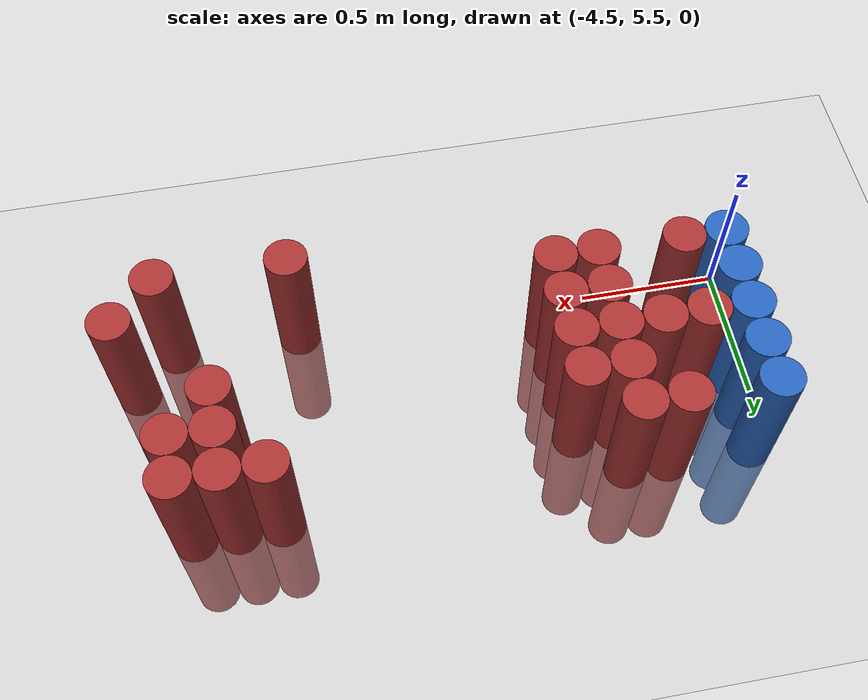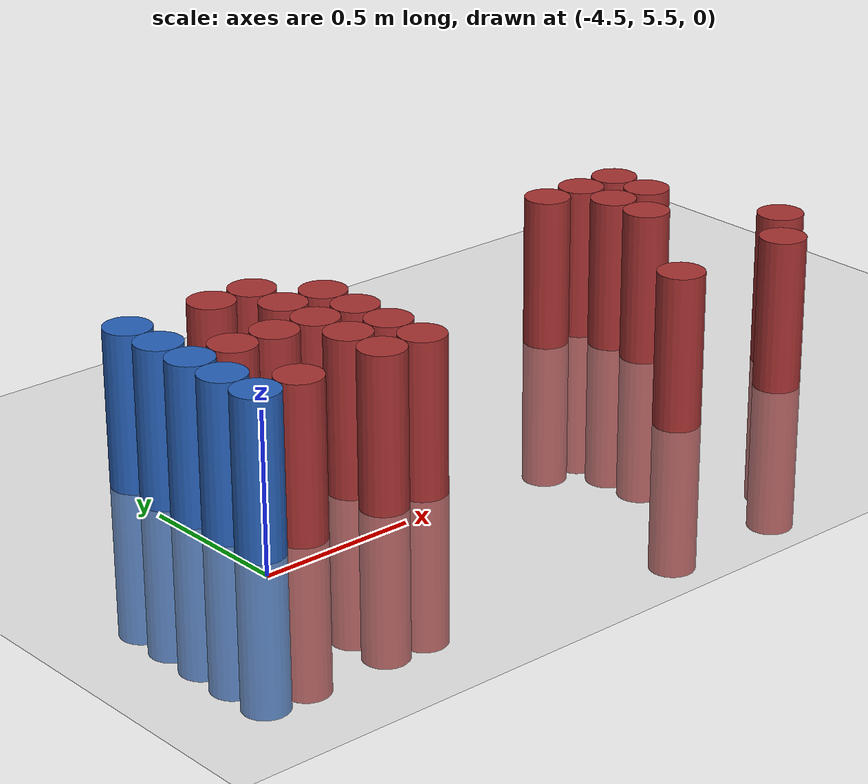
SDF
<sdf version="1.6">
 <world name="default">
  <model name="ground_plane">
   <static>1</static>
   <link name="link">
    <collision name="collision">
     <geometry><plane><normal>0 0 1</normal><size>100 100</size></plane></geometry>
     <surface><friction><ode><mu>100</mu><mu2>50</mu2></ode></friction></surface>
    </collision>
    <visual name="visual">
     <cast_shadows>0</cast_shadows>
     <geometry><plane><normal>0 0 1</normal><size>100 100</size></plane></geometry>
     <material>
      <script><uri>file://media/materials/scripts/gazebo.material</uri><name>Gazebo/Grey</name></script>
     </material>
    </visual>
   </link>
  </model>
  <model name="unit_cylinder_99">
   <static>1</static>
   <pose>-4.425000 5.625000 0.000000 0.000000 0.000000 0.000000</pose>
   <link name="link">
    <inertial>
     <mass>1</mass>
     <inertia><ixx>0.145833</ixx><ixy>0</ixy><ixz>0</ixz><iyy>0.145833</iyy><iyz>0</iyz><izz>0.125</izz></inertia>
    </inertial>
    <collision name="collision">
     <geometry><cylinder><radius>0.075000</radius><length>1</length></cylinder></geometry>
    </collision>
    <visual name="visual">
     <geometry><cylinder><radius>0.075000</radius><length>1</length></cylinder></geometry>
     <material>
      <ambient>0.152000 0.379000 0.720000 1</ambient>
      <diffuse>0.152000 0.379000 0.720000 1</diffuse>
     </material>
     <material>
      <script><name>Gazebo/Grey</name><uri>file://media/materials/scripts/gazebo.material</uri></script>
     </material>
    </visual>
   </link>
  </model>
  <model name="unit_cylinder_100">
   <static>1</static>
   <pose>-4.425000 5.775000 0.000000 0.000000 0.000000 0.000000</pose>
   <link name="link">
    <inertial>
     <mass>1</mass>
     <inertia><ixx>0.145833</ixx><ixy>0</ixy><ixz>0</ixz><iyy>0.145833</iyy><iyz>0</iyz><izz>0.125</izz></inertia>
    </inertial>
    <collision name="collision">
     <geometry><cylinder><radius>0.075000</radius><length>1</length></cylinder></geometry>
    </collision>
    <visual name="visual">
     <geometry><cylinder><radius>0.075000</radius><length>1</length></cylinder></geometry>
     <material>
      <ambient>0.152000 0.379000 0.720000 1</ambient>
      <diffuse>0.152000 0.379000 0.720000 1</diffuse>
     </material>
     <material>
      <script><name>Gazebo/Grey</name><uri>file://media/materials/scripts/gazebo.material</uri></script>
     </material>
    </visual>
   </link>
  </model>
  <model name="unit_cylinder_101">
   <static>1</static>
   <pose>-4.425000 5.925000 0.000000 0.000000 0.000000 0.000000</pose>
   <link name="link">
    <inertial>
     <mass>1</mass>
     <inertia><ixx>0.145833</ixx><ixy>0</ixy><ixz>0</ixz><iyy>0.145833</iyy><iyz>0</iyz><izz>0.125</izz></inertia>
    </inertial>
    <collision name="collision">
     <geometry><cylinder><radius>0.075000</radius><length>1</length></cylinder></geometry>
    </collision>
    <visual name="visual">
     <geometry><cylinder><radius>0.075000</radius><length>1</length></cylinder></geometry>
     <material>
      <ambient>0.152000 0.379000 0.720000 1</ambient>
      <diffuse>0.152000 0.379000 0.720000 1</diffuse>
     </material>
     <material>
      <script><name>Gazebo/Grey</name><uri>file://media/materials/scripts/gazebo.material</uri></script>
     </material>
    </visual>
   </link>
  </model>
  <model name="unit_cylinder_102">
   <static>1</static>
   <pose>-4.425000 6.075000 0.000000 0.000000 0.000000 0.000000</pose>
   <link name="link">
    <inertial>
     <mass>1</mass>
     <inertia><ixx>0.145833</ixx><ixy>0</ixy><ixz>0</ixz><iyy>0.145833</iyy><iyz>0</iyz><izz>0.125</izz></inertia>
    </inertial>
    <collision name="collision">
     <geometry><cylinder><radius>0.075000</radius><length>1</length></cylinder></geometry>
    </collision>
    <visual name="visual">
     <geometry><cylinder><radius>0.075000</radius><length>1</length></cylinder></geometry>
     <material>
      <ambient>0.152000 0.379000 0.720000 1</ambient>
      <diffuse>0.152000 0.379000 0.720000 1</diffuse>
     </material>
     <material>
      <script><name>Gazebo/Grey</name><uri>file://media/materials/scripts/gazebo.material</uri></script>
     </material>
    </visual>
   </link>
  </model>
  <model name="unit_cylinder_103">
   <static>1</static>
   <pose>-4.425000 6.225000 0.000000 0.000000 0.000000 0.000000</pose>
   <link name="link">
    <inertial>
     <mass>1</mass>
     <inertia><ixx>0.145833</ixx><ixy>0</ixy><ixz>0</ixz><iyy>0.145833</iyy><iyz>0</iyz><izz>0.125</izz></inertia>
    </inertial>
    <collision name="collision">
     <geometry><cylinder><radius>0.075000</radius><length>1</length></cylinder></geometry>
    </collision>
    <visual name="visual">
     <geometry><cylinder><radius>0.075000</radius><length>1</length></cylinder></geometry>
     <material>
      <ambient>0.152000 0.379000 0.720000 1</ambient>
      <diffuse>0.152000 0.379000 0.720000 1</diffuse>
     </material>
     <material>
      <script><name>Gazebo/Grey</name><uri>file://media/materials/scripts/gazebo.material</uri></script>
     </material>
    </visual>
   </link>
  </model>
  <model name="unit_cylinder_128">
   <static>1</static>
   <pose>-4.275000 5.625000 0.000000 0.000000 0.000000 0.000000</pose>
   <link name="link">
    <inertial>
     <mass>1</mass>
     <inertia><ixx>0.145833</ixx><ixy>0</ixy><ixz>0</ixz><iyy>0.145833</iyy><iyz>0</iyz><izz>0.125</izz></inertia>
    </inertial>
    <collision name="collision">
     <geometry><cylinder><radius>0.075000</radius><length>1</length></cylinder></geometry>
    </collision>
    <visual name="visual">
     <geometry><cylinder><radius>0.075000</radius><length>1</length></cylinder></geometry>
     <material>
      <ambient>0.648000 0.192000 0.192000 1</ambient>
      <diffuse>0.648000 0.192000 0.192000 1</diffuse>
     </material>
     <material>
      <script><name>Gazebo/Grey</name><uri>file://media/materials/scripts/gazebo.material</uri></script>
     </material>
    </visual>
   </link>
  </model>
  <model name="unit_cylinder_129">
   <static>1</static>
   <pose>-4.275000 5.925000 0.000000 0.000000 0.000000 0.000000</pose>
   <link name="link">
    <inertial>
     <mass>1</mass>
     <inertia><ixx>0.145833</ixx><ixy>0</ixy><ixz>0</ixz><iyy>0.145833</iyy><iyz>0</iyz><izz>0.125</izz></inertia>
    </inertial>
    <collision name="collision">
     <geometry><cylinder><radius>0.075000</radius><length>1</length></cylinder></geometry>
    </collision>
    <visual name="visual">
     <geometry><cylinder><radius>0.075000</radius><length>1</length></cylinder></geometry>
     <material>
      <ambient>0.648000 0.192000 0.192000 1</ambient>
      <diffuse>0.648000 0.192000 0.192000 1</diffuse>
     </material>
     <material>
      <script><name>Gazebo/Grey</name><uri>file://media/materials/scripts/gazebo.material</uri></script>
     </material>
    </visual>
   </link>
  </model>
  <model name="unit_cylinder_137">
   <static>1</static>
   <pose>-4.125000 5.925000 0.000000 0.000000 0.000000 0.000000</pose>
   <link name="link">
    <inertial>
     <mass>1</mass>
     <inertia><ixx>0.145833</ixx><ixy>0</ixy><ixz>0</ixz><iyy>0.145833</iyy><iyz>0</iyz><izz>0.125</izz></inertia>
    </inertial>
    <collision name="collision">
     <geometry><cylinder><radius>0.075000</radius><length>1</length></cylinder></geometry>
    </collision>
    <visual name="visual">
     <geometry><cylinder><radius>0.075000</radius><length>1</length></cylinder></geometry>
     <material>
      <ambient>0.648000 0.192000 0.192000 1</ambient>
      <diffuse>0.648000 0.192000 0.192000 1</diffuse>
     </material>
     <material>
      <script><name>Gazebo/Grey</name><uri>file://media/materials/scripts/gazebo.material</uri></script>
     </material>
    </visual>
   </link>
  </model>
  <model name="unit_cylinder_138">
   <static>1</static>
   <pose>-4.125000 6.225000 0.000000 0.000000 0.000000 0.000000</pose>
   <link name="link">
    <inertial>
     <mass>1</mass>
     <inertia><ixx>0.145833</ixx><ixy>0</ixy><ixz>0</ixz><iyy>0.145833</iyy><iyz>0</iyz><izz>0.125</izz></inertia>
    </inertial>
    <collision name="collision">
     <geometry><cylinder><radius>0.075000</radius><length>1</length></cylinder></geometry>
    </collision>
    <visual name="visual">
     <geometry><cylinder><radius>0.075000</radius><length>1</length></cylinder></geometry>
     <material>
      <ambient>0.648000 0.192000 0.192000 1</ambient>
      <diffuse>0.648000 0.192000 0.192000 1</diffuse>
     </material>
     <material>
      <script><name>Gazebo/Grey</name><uri>file://media/materials/scripts/gazebo.material</uri></script>
     </material>
    </visual>
   </link>
  </model>
  <model name="unit_cylinder_140">
   <static>1</static>
   <pose>-3.975000 5.625000 0.000000 0.000000 0.000000 0.000000</pose>
   <link name="link">
    <inertial>
     <mass>1</mass>
     <inertia><ixx>0.145833</ixx><ixy>0</ixy><ixz>0</ixz><iyy>0.145833</iyy><iyz>0</iyz><izz>0.125</izz></inertia>
    </inertial>
    <collision name="collision">
     <geometry><cylinder><radius>0.075000</radius><length>1</length></cylinder></geometry>
    </collision>
    <visual name="visual">
     <geometry><cylinder><radius>0.075000</radius><length>1</length></cylinder></geometry>
     <material>
      <ambient>0.648000 0.192000 0.192000 1</ambient>
      <diffuse>0.648000 0.192000 0.192000 1</diffuse>
     </material>
     <material>
      <script><name>Gazebo/Grey</name><uri>file://media/materials/scripts/gazebo.material</uri></script>
     </material>
    </visual>
   </link>
  </model>
  <model name="unit_cylinder_141">
   <static>1</static>
   <pose>-3.975000 5.775000 0.000000 0.000000 0.000000 0.000000</pose>
   <link name="link">
    <inertial>
     <mass>1</mass>
     <inertia><ixx>0.145833</ixx><ixy>0</ixy><ixz>0</ixz><iyy>0.145833</iyy><iyz>0</iyz><izz>0.125</izz></inertia>
    </inertial>
    <collision name="collision">
     <geometry><cylinder><radius>0.075000</radius><length>1</length></cylinder></geometry>
    </collision>
    <visual name="visual">
     <geometry><cylinder><radius>0.075000</radius><length>1</length></cylinder></geometry>
     <material>
      <ambient>0.648000 0.192000 0.192000 1</ambient>
      <diffuse>0.648000 0.192000 0.192000 1</diffuse>
     </material>
     <material>
      <script><name>Gazebo/Grey</name><uri>file://media/materials/scripts/gazebo.material</uri></script>
     </material>
    </visual>
   </link>
  </model>
  <model name="unit_cylinder_142">
   <static>1</static>
   <pose>-3.975000 5.925000 0.000000 0.000000 0.000000 0.000000</pose>
   <link name="link">
    <inertial>
     <mass>1</mass>
     <inertia><ixx>0.145833</ixx><ixy>0</ixy><ixz>0</ixz><iyy>0.145833</iyy><iyz>0</iyz><izz>0.125</izz></inertia>
    </inertial>
    <collision name="collision">
     <geometry><cylinder><radius>0.075000</radius><length>1</length></cylinder></geometry>
    </collision>
    <visual name="visual">
     <geometry><cylinder><radius>0.075000</radius><length>1</length></cylinder></geometry>
     <material>
      <ambient>0.648000 0.192000 0.192000 1</ambient>
      <diffuse>0.648000 0.192000 0.192000 1</diffuse>
     </material>
     <material>
      <script><name>Gazebo/Grey</name><uri>file://media/materials/scripts/gazebo.material</uri></script>
     </material>
    </visual>
   </link>
  </model>
  <model name="unit_cylinder_143">
   <static>1</static>
   <pose>-3.975000 6.075000 0.000000 0.000000 0.000000 0.000000</pose>
   <link name="link">
    <inertial>
     <mass>1</mass>
     <inertia><ixx>0.145833</ixx><ixy>0</ixy><ixz>0</ixz><iyy>0.145833</iyy><iyz>0</iyz><izz>0.125</izz></inertia>
    </inertial>
    <collision name="collision">
     <geometry><cylinder><radius>0.075000</radius><length>1</length></cylinder></geometry>
    </collision>
    <visual name="visual">
     <geometry><cylinder><radius>0.075000</radius><length>1</length></cylinder></geometry>
     <material>
      <ambient>0.648000 0.192000 0.192000 1</ambient>
      <diffuse>0.648000 0.192000 0.192000 1</diffuse>
     </material>
     <material>
      <script><name>Gazebo/Grey</name><uri>file://media/materials/scripts/gazebo.material</uri></script>
     </material>
    </visual>
   </link>
  </model>
  <model name="unit_cylinder_144">
   <static>1</static>
   <pose>-3.975000 6.225000 0.000000 0.000000 0.000000 0.000000</pose>
   <link name="link">
    <inertial>
     <mass>1</mass>
     <inertia><ixx>0.145833</ixx><ixy>0</ixy><ixz>0</ixz><iyy>0.145833</iyy><iyz>0</iyz><izz>0.125</izz></inertia>
    </inertial>
    <collision name="collision">
     <geometry><cylinder><radius>0.075000</radius><length>1</length></cylinder></geometry>
    </collision>
    <visual name="visual">
     <geometry><cylinder><radius>0.075000</radius><length>1</length></cylinder></geometry>
     <material>
      <ambient>0.648000 0.192000 0.192000 1</ambient>
      <diffuse>0.648000 0.192000 0.192000 1</diffuse>
     </material>
     <material>
      <script><name>Gazebo/Grey</name><uri>file://media/materials/scripts/gazebo.material</uri></script>
     </material>
    </visual>
   </link>
  </model>
  <model name="unit_cylinder_145">
   <static>1</static>
   <pose>-3.825000 5.625000 0.000000 0.000000 0.000000 0.000000</pose>
   <link name="link">
    <inertial>
     <mass>1</mass>
     <inertia><ixx>0.145833</ixx><ixy>0</ixy><ixz>0</ixz><iyy>0.145833</iyy><iyz>0</iyz><izz>0.125</izz></inertia>
    </inertial>
    <collision name="collision">
     <geometry><cylinder><radius>0.075000</radius><length>1</length></cylinder></geometry>
    </collision>
    <visual name="visual">
     <geometry><cylinder><radius>0.075000</radius><length>1</length></cylinder></geometry>
     <material>
      <ambient>0.648000 0.192000 0.192000 1</ambient>
      <diffuse>0.648000 0.192000 0.192000 1</diffuse>
     </material>
     <material>
      <script><name>Gazebo/Grey</name><uri>file://media/materials/scripts/gazebo.material</uri></script>
     </material>
    </visual>
   </link>
  </model>
  <model name="unit_cylinder_146">
   <static>1</static>
   <pose>-3.825000 5.775000 0.000000 0.000000 0.000000 0.000000</pose>
   <link name="link">
    <inertial>
     <mass>1</mass>
     <inertia><ixx>0.145833</ixx><ixy>0</ixy><ixz>0</ixz><iyy>0.145833</iyy><iyz>0</iyz><izz>0.125</izz></inertia>
    </inertial>
    <collision name="collision">
     <geometry><cylinder><radius>0.075000</radius><length>1</length></cylinder></geometry>
    </collision>
    <visual name="visual">
     <geometry><cylinder><radius>0.075000</radius><length>1</length></cylinder></geometry>
     <material>
      <ambient>0.648000 0.192000 0.192000 1</ambient>
      <diffuse>0.648000 0.192000 0.192000 1</diffuse>
     </material>
     <material>
      <script><name>Gazebo/Grey</name><uri>file://media/materials/scripts/gazebo.material</uri></script>
     </material>
    </visual>
   </link>
  </model>
  <model name="unit_cylinder_147">
   <static>1</static>
   <pose>-3.825000 5.925000 0.000000 0.000000 0.000000 0.000000</pose>
   <link name="link">
    <inertial>
     <mass>1</mass>
     <inertia><ixx>0.145833</ixx><ixy>0</ixy><ixz>0</ixz><iyy>0.145833</iyy><iyz>0</iyz><izz>0.125</izz></inertia>
    </inertial>
    <collision name="collision">
     <geometry><cylinder><radius>0.075000</radius><length>1</length></cylinder></geometry>
    </collision>
    <visual name="visual">
     <geometry><cylinder><radius>0.075000</radius><length>1</length></cylinder></geometry>
     <material>
      <ambient>0.648000 0.192000 0.192000 1</ambient>
      <diffuse>0.648000 0.192000 0.192000 1</diffuse>
     </material>
     <material>
      <script><name>Gazebo/Grey</name><uri>file://media/materials/scripts/gazebo.material</uri></script>
     </material>
    </visual>
   </link>
  </model>
  <model name="unit_cylinder_148">
   <static>1</static>
   <pose>-3.825000 6.075000 0.000000 0.000000 0.000000 0.000000</pose>
   <link name="link">
    <inertial>
     <mass>1</mass>
     <inertia><ixx>0.145833</ixx><ixy>0</ixy><ixz>0</ixz><iyy>0.145833</iyy><iyz>0</iyz><izz>0.125</izz></inertia>
    </inertial>
    <collision name="collision">
     <geometry><cylinder><radius>0.075000</radius><length>1</length></cylinder></geometry>
    </collision>
    <visual name="visual">
     <geometry><cylinder><radius>0.075000</radius><length>1</length></cylinder></geometry>
     <material>
      <ambient>0.648000 0.192000 0.192000 1</ambient>
      <diffuse>0.648000 0.192000 0.192000 1</diffuse>
     </material>
     <material>
      <script><name>Gazebo/Grey</name><uri>file://media/materials/scripts/gazebo.material</uri></script>
     </material>
    </visual>
   </link>
  </model>
  <model name="unit_cylinder_152">
   <static>1</static>
   <pose>-2.925000 5.475000 0.000000 0.000000 0.000000 0.000000</pose>
   <link name="link">
    <inertial>
     <mass>1</mass>
     <inertia><ixx>0.145833</ixx><ixy>0</ixy><ixz>0</ixz><iyy>0.145833</iyy><iyz>0</iyz><izz>0.125</izz></inertia>
    </inertial>
    <collision name="collision">
     <geometry><cylinder><radius>0.075000</radius><length>1</length></cylinder></geometry>
    </collision>
    <visual name="visual">
     <geometry><cylinder><radius>0.075000</radius><length>1</length></cylinder></geometry>
     <material>
      <ambient>0.648000 0.192000 0.192000 1</ambient>
      <diffuse>0.648000 0.192000 0.192000 1</diffuse>
     </material>
     <material>
      <script><name>Gazebo/Grey</name><uri>file://media/materials/scripts/gazebo.material</uri></script>
     </material>
    </visual>
   </link>
  </model>
  <model name="unit_cylinder_157">
   <static>1</static>
   <pose>-2.775000 6.225000 0.000000 0.000000 0.000000 0.000000</pose>
   <link name="link">
    <inertial>
     <mass>1</mass>
     <inertia><ixx>0.145833</ixx><ixy>0</ixy><ixz>0</ixz><iyy>0.145833</iyy><iyz>0</iyz><izz>0.125</izz></inertia>
    </inertial>
    <collision name="collision">
     <geometry><cylinder><radius>0.075000</radius><length>1</length></cylinder></geometry>
    </collision>
    <visual name="visual">
     <geometry><cylinder><radius>0.075000</radius><length>1</length></cylinder></geometry>
     <material>
      <ambient>0.648000 0.192000 0.192000 1</ambient>
      <diffuse>0.648000 0.192000 0.192000 1</diffuse>
     </material>
     <material>
      <script><name>Gazebo/Grey</name><uri>file://media/materials/scripts/gazebo.material</uri></script>
     </material>
    </visual>
   </link>
  </model>
  <model name="unit_cylinder_165">
   <static>1</static>
   <pose>-2.625000 5.925000 0.000000 0.000000 0.000000 0.000000</pose>
   <link name="link">
    <inertial>
     <mass>1</mass>
     <inertia><ixx>0.145833</ixx><ixy>0</ixy><ixz>0</ixz><iyy>0.145833</iyy><iyz>0</iyz><izz>0.125</izz></inertia>
    </inertial>
    <collision name="collision">
     <geometry><cylinder><radius>0.075000</radius><length>1</length></cylinder></geometry>
    </collision>
    <visual name="visual">
     <geometry><cylinder><radius>0.075000</radius><length>1</length></cylinder></geometry>
     <material>
      <ambient>0.648000 0.192000 0.192000 1</ambient>
      <diffuse>0.648000 0.192000 0.192000 1</diffuse>
     </material>
     <material>
      <script><name>Gazebo/Grey</name><uri>file://media/materials/scripts/gazebo.material</uri></script>
     </material>
    </visual>
   </link>
  </model>
  <model name="unit_cylinder_166">
   <static>1</static>
   <pose>-2.625000 6.075000 0.000000 0.000000 0.000000 0.000000</pose>
   <link name="link">
    <inertial>
     <mass>1</mass>
     <inertia><ixx>0.145833</ixx><ixy>0</ixy><ixz>0</ixz><iyy>0.145833</iyy><iyz>0</iyz><izz>0.125</izz></inertia>
    </inertial>
    <collision name="collision">
     <geometry><cylinder><radius>0.075000</radius><length>1</length></cylinder></geometry>
    </collision>
    <visual name="visual">
     <geometry><cylinder><radius>0.075000</radius><length>1</length></cylinder></geometry>
     <material>
      <ambient>0.648000 0.192000 0.192000 1</ambient>
      <diffuse>0.648000 0.192000 0.192000 1</diffuse>
     </material>
     <material>
      <script><name>Gazebo/Grey</name><uri>file://media/materials/scripts/gazebo.material</uri></script>
     </material>
    </visual>
   </link>
  </model>
  <model name="unit_cylinder_167">
   <static>1</static>
   <pose>-2.625000 6.225000 0.000000 0.000000 0.000000 0.000000</pose>
   <link name="link">
    <inertial>
     <mass>1</mass>
     <inertia><ixx>0.145833</ixx><ixy>0</ixy><ixz>0</ixz><iyy>0.145833</iyy><iyz>0</iyz><izz>0.125</izz></inertia>
    </inertial>
    <collision name="collision">
     <geometry><cylinder><radius>0.075000</radius><length>1</length></cylinder></geometry>
    </collision>
    <visual name="visual">
     <geometry><cylinder><radius>0.075000</radius><length>1</length></cylinder></geometry>
     <material>
      <ambient>0.648000 0.192000 0.192000 1</ambient>
      <diffuse>0.648000 0.192000 0.192000 1</diffuse>
     </material>
     <material>
      <script><name>Gazebo/Grey</name><uri>file://media/materials/scripts/gazebo.material</uri></script>
     </material>
    </visual>
   </link>
  </model>
  <model name="unit_cylinder_174">
   <static>1</static>
   <pose>-2.475000 5.475000 0.000000 0.000000 0.000000 0.000000</pose>
   <link name="link">
    <inertial>
     <mass>1</mass>
     <inertia><ixx>0.145833</ixx><ixy>0</ixy><ixz>0</ixz><iyy>0.145833</iyy><iyz>0</iyz><izz>0.125</izz></inertia>
    </inertial>
    <collision name="collision">
     <geometry><cylinder><radius>0.075000</radius><length>1</length></cylinder></geometry>
    </collision>
    <visual name="visual">
     <geometry><cylinder><radius>0.075000</radius><length>1</length></cylinder></geometry>
     <material>
      <ambient>0.648000 0.192000 0.192000 1</ambient>
      <diffuse>0.648000 0.192000 0.192000 1</diffuse>
     </material>
     <material>
      <script><name>Gazebo/Grey</name><uri>file://media/materials/scripts/gazebo.material</uri></script>
     </material>
    </visual>
   </link>
  </model>
  <model name="unit_cylinder_175">
   <static>1</static>
   <pose>-2.475000 6.075000 0.000000 0.000000 0.000000 0.000000</pose>
   <link name="link">
    <inertial>
     <mass>1</mass>
     <inertia><ixx>0.145833</ixx><ixy>0</ixy><ixz>0</ixz><iyy>0.145833</iyy><iyz>0</iyz><izz>0.125</izz></inertia>
    </inertial>
    <collision name="collision">
     <geometry><cylinder><radius>0.075000</radius><length>1</length></cylinder></geometry>
    </collision>
    <visual name="visual">
     <geometry><cylinder><radius>0.075000</radius><length>1</length></cylinder></geometry>
     <material>
      <ambient>0.648000 0.192000 0.192000 1</ambient>
      <diffuse>0.648000 0.192000 0.192000 1</diffuse>
     </material>
     <material>
      <script><name>Gazebo/Grey</name><uri>file://media/materials/scripts/gazebo.material</uri></script>
     </material>
    </visual>
   </link>
  </model>
  <model name="unit_cylinder_176">
   <static>1</static>
   <pose>-2.475000 6.225000 0.000000 0.000000 0.000000 0.000000</pose>
   <link name="link">
    <inertial>
     <mass>1</mass>
     <inertia><ixx>0.145833</ixx><ixy>0</ixy><ixz>0</ixz><iyy>0.145833</iyy><iyz>0</iyz><izz>0.125</izz></inertia>
    </inertial>
    <collision name="collision">
     <geometry><cylinder><radius>0.075000</radius><length>1</length></cylinder></geometry>
    </collision>
    <visual name="visual">
     <geometry><cylinder><radius>0.075000</radius><length>1</length></cylinder></geometry>
     <material>
      <ambient>0.648000 0.192000 0.192000 1</ambient>
      <diffuse>0.648000 0.192000 0.192000 1</diffuse>
     </material>
     <material>
      <script><name>Gazebo/Grey</name><uri>file://media/materials/scripts/gazebo.material</uri></script>
     </material>
    </visual>
   </link>
  </model>
  <model name="unit_cylinder_178">
   <static>1</static>
   <pose>-2.325000 5.625000 0.000000 0.000000 0.000000 0.000000</pose>
   <link name="link">
    <inertial>
     <mass>1</mass>
     <inertia><ixx>0.145833</ixx><ixy>0</ixy><ixz>0</ixz><iyy>0.145833</iyy><iyz>0</iyz><izz>0.125</izz></inertia>
    </inertial>
    <collision name="collision">
     <geometry><cylinder><radius>0.075000</radius><length>1</length></cylinder></geometry>
    </collision>
    <visual name="visual">
     <geometry><cylinder><radius>0.075000</radius><length>1</length></cylinder></geometry>
     <material>
      <ambient>0.648000 0.192000 0.192000 1</ambient>
      <diffuse>0.648000 0.192000 0.192000 1</diffuse>
     </material>
     <material>
      <script><name>Gazebo/Grey</name><uri>file://media/materials/scripts/gazebo.material</uri></script>
     </material>
    </visual>
   </link>
  </model>
 </world>
</sdf>
